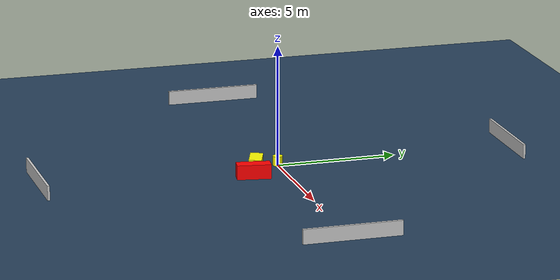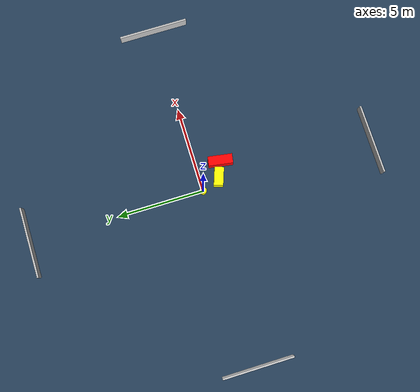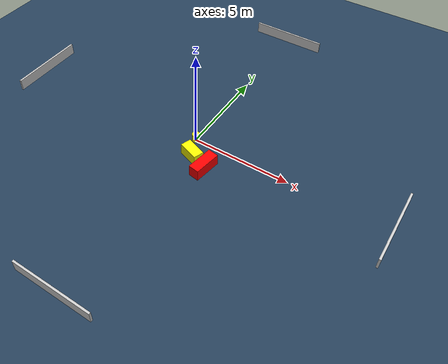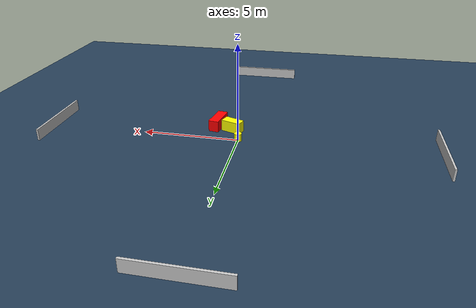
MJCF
<?xml version="1.0" ?>
<mujoco model="generated_environment">
  <option timestep="0.01" integrator="RK4" cone="elliptic"/>
  <default>
    <geom density="1"/>
  </default>
  <asset>
    <texture builtin="gradient" height="3072" name="skybox" rgb1="0.3 0.5 0.7" rgb2="0 0 0" type="skybox" width="512"/>
    <texture builtin="checker" height="300" name="groundplane" rgb1="0.2 0.3 0.4" rgb2="0.1 0.2 0.3" type="2d" width="300"/>
    <material name="groundplane" reflectance="0.2" texrepeat="5 5" texture="groundplane"/>
  </asset>
  <worldbody>
    <light dir="0 0 -1" directional="true" pos="0 0 1.5"/>
    <geom condim="3" friction="0.5 0.005 0.001" material="groundplane" name="floor" pos="0 0 0" size="0 0 0.05" type="plane"/>
    <body name="walls">
      <geom name="wall_1" condim="4" pos="-10.0 0.0 0.3" rgba="0.800000011920929 0.800000011920929 0.800000011920929 1.0" size="0.05 2.0 0.3" type="box"/>
      <geom name="wall_2" condim="4" pos="10.0 0.0 0.3" rgba="0.800000011920929 0.800000011920929 0.800000011920929 1.0" size="0.05 2.0 0.3" type="box"/>
      <geom name="wall_3" condim="4" pos="0.0 -10.0 0.3" rgba="0.800000011920929 0.800000011920929 0.800000011920929 1.0" size="2.0 0.05 0.3" type="box"/>
      <geom name="wall_4" condim="4" pos="0.0 10.0 0.3" rgba="0.800000011920929 0.800000011920929 0.800000011920929 1.0" size="2.0 0.05 0.3" type="box"/>
    </body>
    <body name="robot">
      <joint name="joint_x" type="slide" pos="0 0 0" axis="1 0 0"/>
      <joint name="joint_y" type="slide" pos="0 0 0" axis="0 1 0"/>
      <geom name="robot" type="cylinder" pos="0.0 0.0 0.2" size="0.2 0.2 0.0" mass="5.0" friction="1.0 0.005 0.0001" condim="4" rgba="1.0 1.0 0.0 1.0"/>
    </body>
    <body name="obstacle_1_movable">
      <geom name="obstacle_1_movable" condim="4" pos="0.48791734996131764 -1.0656750266486443 0.3" euler="0 0 340.13000691321486" friction="0.0 0.005 0.001" rgba="1.0 1.0 0.0 1.0" size="0.526793078715273 0.26517199899142696 0.3" type="box" mass="0.1"/>
      <joint type="free"/>
    </body>
    <body name="obstacle_2_static">
      <geom name="obstacle_2_static" condim="4" pos="1.355963405684382 -1.4220754002603122 0.3" euler="0 0 261.0141996285499" friction="0.0 0.005 0.001" rgba="1.0 0.0 0.0 1.0" size="0.6954400417079496 0.26992693669814716 0.3" type="box"/>
    </body>
  </worldbody>
  <actuator>
    <motor name="actuator_x" joint="joint_x" gear="1" ctrlrange="-1 1"/>
    <motor name="actuator_y" joint="joint_y" gear="1" ctrlrange="-1 1"/>
  </actuator>
</mujoco>
